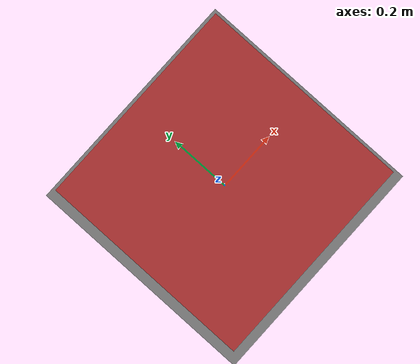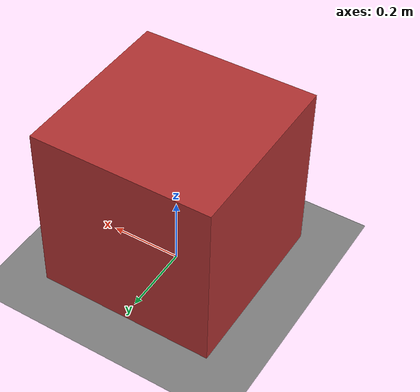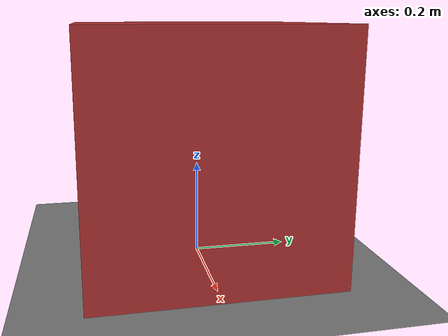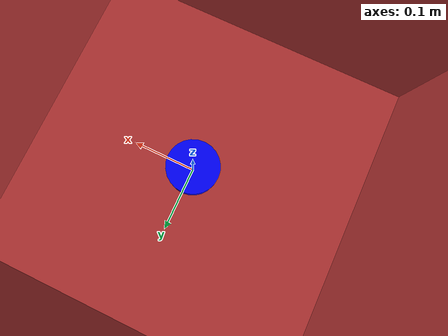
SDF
<?xml version="1.0" ?>
<sdf version="1.12">
  <world name="altimeter_world">

    <!-- altimeter sensor plugin -->
    <plugin
      filename="gz-sim-altimeter-system"
      name="gz::sim::systems::Altimeter">
    </plugin>

    <!-- Ground plane -->
    <model name="ground_plane">
      <static>true</static>
      <link name="link">
        <inertial>
          <mass>0.0001</mass>
          <inertia>
            <ixx>1e-6</ixx>
            <iyy>1e-6</iyy>
            <izz>1e-6</izz>
          </inertia>
        </inertial>
        <collision name="collision">
          <geometry>
            <plane>
              <normal>0 0 1</normal>
              <size>10 10</size>
            </plane>
          </geometry>
        </collision>
        <visual name="visual">
          <geometry>
            <plane>
              <normal>0 0 1</normal>
              <size>10 10</size>
            </plane>
          </geometry>
          <material>
            <ambient>0.5 0.5 0.5 1</ambient>
            <diffuse>0.5 0.5 0.5 1</diffuse>
          </material>
        </visual>
      </link>
    </model>

    <!-- Cube with thruster -->
    <model name="cube_with_thruster">
      <pose>0 0 0.25 0 0 0</pose>
      <static>false</static>

      <!-- Cube link -->
      <link name="base_link">
        <inertial>
          <mass>1.0</mass>
          <inertia>
            <ixx>0.02</ixx>
            <iyy>0.02</iyy>
            <izz>0.02</izz>
          </inertia>
        </inertial>

        <collision name="collision">
          <geometry>
            <box>
              <size>0.5 0.5 0.5</size>
            </box>
          </geometry>
        </collision>

        <visual name="visual">
          <geometry>
            <box>
              <size>0.5 0.5 0.5</size>
            </box>
          </geometry>
          <material>
            <ambient>0.7 0.2 0.2 1</ambient>
            <diffuse>0.7 0.2 0.2 1</diffuse>
          </material>
        </visual>

      <!-- Altimeter Sensor link? -->
      <sensor name="altimeter_sensor" type="altimeter">
        <always_on>1</always_on>
        <update_rate>30</update_rate>
        <visualize>true</visualize>
        <topic>/altimeter</topic>
      </sensor>

      </link>

      <!-- Thruster link -->
      <link name="thruster_link">
        <pose>0 0 -0.25 0 0 0</pose>
        <inertial>
          <mass>0.2</mass>
          <inertia>
            <ixx>0.001</ixx>
            <iyy>0.001</iyy>
            <izz>0.001</izz>
          </inertia>
        </inertial>

        <collision name="thruster_collision">
          <geometry>
            <cylinder>
              <radius>0.04</radius>
              <length>0.08</length>
            </cylinder>
          </geometry>
        </collision>

        <visual name="thruster_visual">
          <geometry>
            <cylinder>
              <radius>0.04</radius>
              <length>0.08</length>
            </cylinder>
          </geometry>
          <material>
            <ambient>0 0 1 1</ambient>
            <diffuse>0 0 1 1</diffuse>
          </material>
        </visual>
      </link>

      <!-- Prismatic joint along Z for thruster plugin -->
      <joint name="thruster_joint" type="prismatic">
        <parent>base_link</parent>
        <child>thruster_link</child>
        <axis>
          <xyz>0 0 1</xyz>
          <limit>
            <lower>0</lower>
            <upper>0</upper>
            <effort>1e6</effort>
          </limit>
          <dynamics>
            <damping>0.01</damping>
          </dynamics>
        </axis>
      </joint>

      <!-- Thruster plugin -->
      <plugin
        filename="gz-sim-thruster-system"
        name="gz::sim::systems::Thruster">
        <joint_name>thruster_joint</joint_name>
        <thrust_coefficient>1.0</thrust_coefficient>
        <velocity_control>true</velocity_control>
      </plugin>

    </model>

    <!-- Very low gravity -->
    <gravity>0 0 -0.01</gravity>

  </world>
</sdf>
